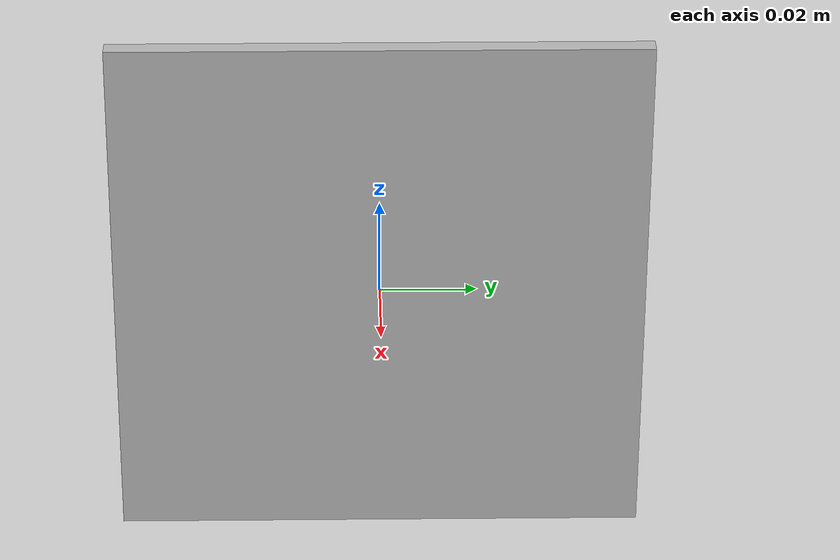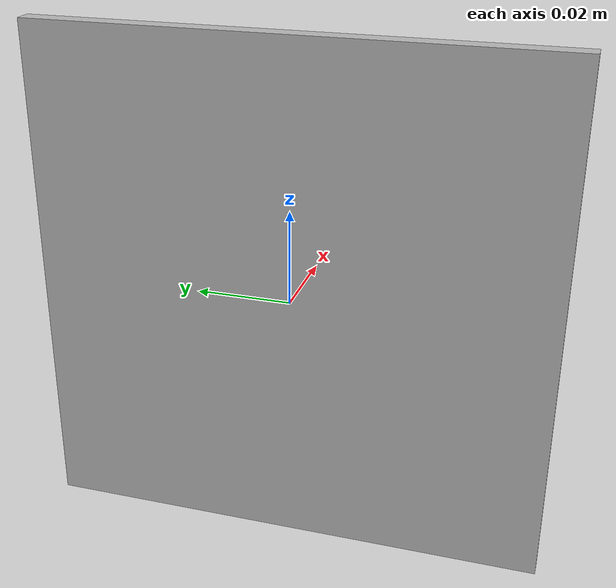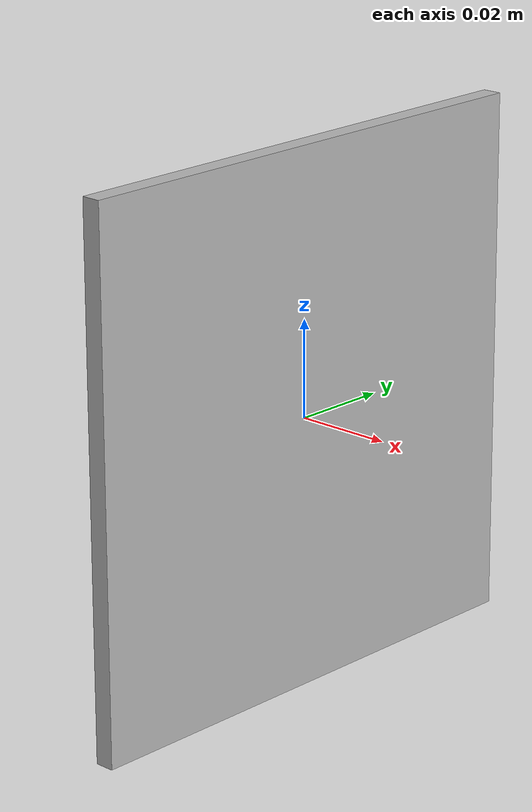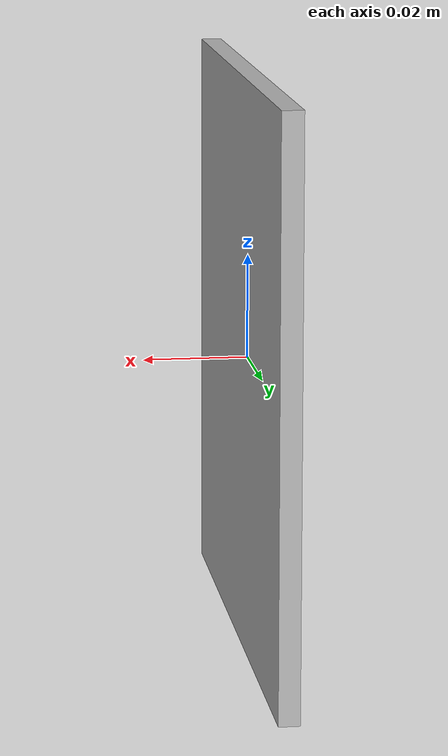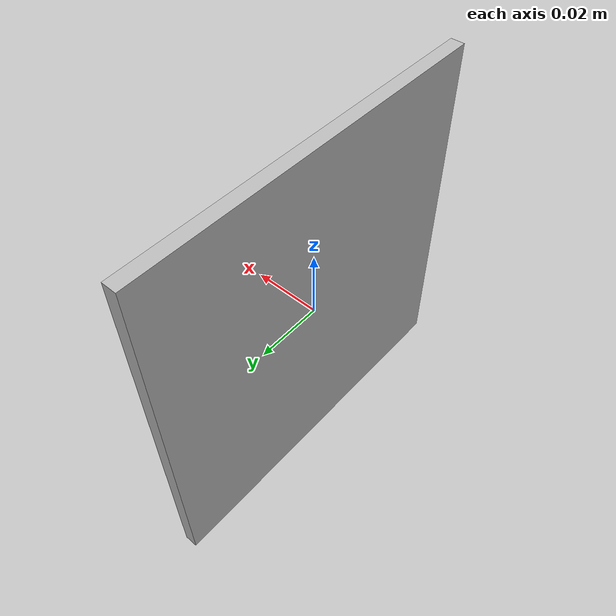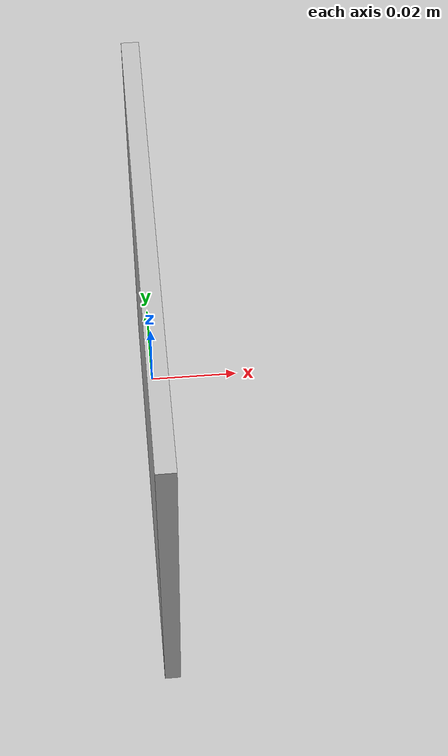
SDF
<?xml version="1.0"?>
<sdf version="1.6">
  <model name="Aruco12">
    <pose>0 0 0 0 0 0</pose>
    <static>true</static>
    <link name="link">
      <visual name="visual">
        <geometry>
          <mesh>
            <uri>model://Aruco12/meshes/aruco4x4_12.dae</uri>
            <scale>1 1 1</scale>
          </mesh>
        </geometry>
      </visual>
    </link>
  </model>
</sdf>
